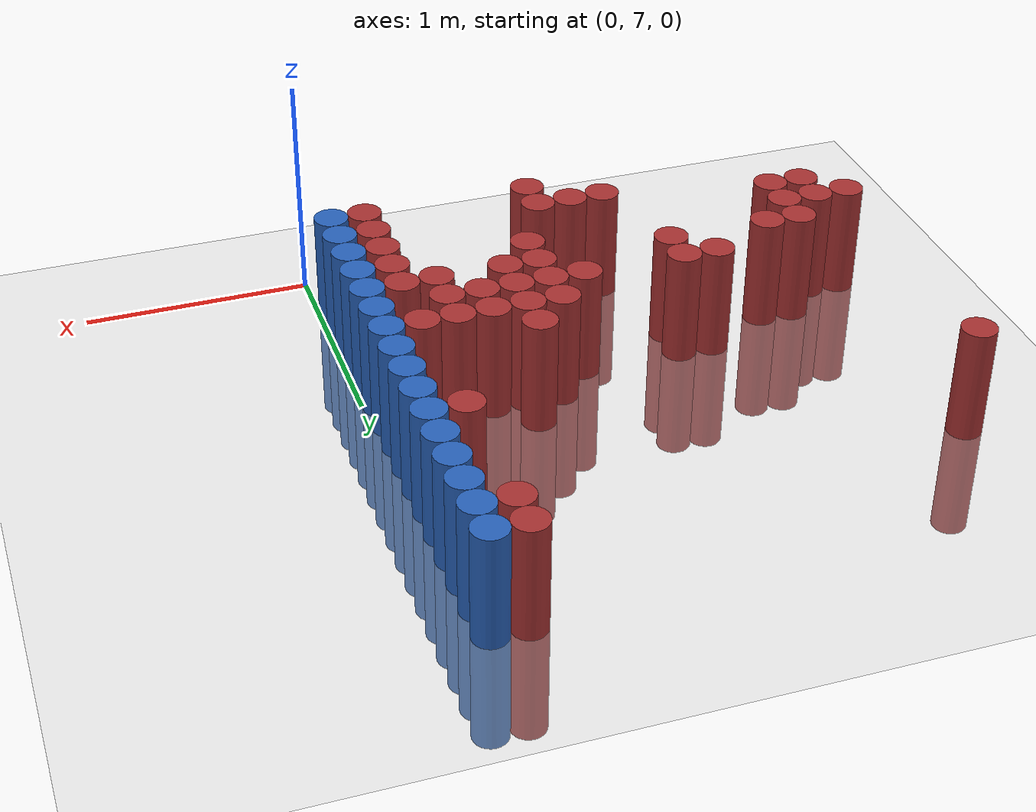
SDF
<sdf version="1.6">
 <world name="default">
  <model name="ground_plane">
   <static>1</static>
   <link name="link">
    <collision name="collision">
     <geometry><plane><normal>0 0 1</normal><size>100 100</size></plane></geometry>
     <surface><friction><ode><mu>100</mu><mu2>50</mu2></ode></friction></surface>
    </collision>
    <visual name="visual">
     <cast_shadows>0</cast_shadows>
     <geometry><plane><normal>0 0 1</normal><size>100 100</size></plane></geometry>
     <material>
      <script><uri>file://media/materials/scripts/gazebo.material</uri><name>Gazebo/Grey</name></script>
     </material>
    </visual>
   </link>
  </model>
  <model name="unit_cylinder_152">
   <static>1</static>
   <pose>-2.325000 7.725000 0.000000 0.000000 0.000000 0.000000</pose>
   <link name="link">
    <inertial>
     <mass>1</mass>
     <inertia><ixx>0.145833</ixx><ixy>0</ixy><ixz>0</ixz><iyy>0.145833</iyy><iyz>0</iyz><izz>0.125</izz></inertia>
    </inertial>
    <collision name="collision">
     <geometry><cylinder><radius>0.075000</radius><length>1</length></cylinder></geometry>
    </collision>
    <visual name="visual">
     <geometry><cylinder><radius>0.075000</radius><length>1</length></cylinder></geometry>
     <material>
      <ambient>0.648000 0.192000 0.192000 1</ambient>
      <diffuse>0.648000 0.192000 0.192000 1</diffuse>
     </material>
     <material>
      <script><name>Gazebo/Grey</name><uri>file://media/materials/scripts/gazebo.material</uri></script>
     </material>
    </visual>
   </link>
  </model>
  <model name="unit_cylinder_153">
   <static>1</static>
   <pose>-2.325000 8.925000 0.000000 0.000000 0.000000 0.000000</pose>
   <link name="link">
    <inertial>
     <mass>1</mass>
     <inertia><ixx>0.145833</ixx><ixy>0</ixy><ixz>0</ixz><iyy>0.145833</iyy><iyz>0</iyz><izz>0.125</izz></inertia>
    </inertial>
    <collision name="collision">
     <geometry><cylinder><radius>0.075000</radius><length>1</length></cylinder></geometry>
    </collision>
    <visual name="visual">
     <geometry><cylinder><radius>0.075000</radius><length>1</length></cylinder></geometry>
     <material>
      <ambient>0.648000 0.192000 0.192000 1</ambient>
      <diffuse>0.648000 0.192000 0.192000 1</diffuse>
     </material>
     <material>
      <script><name>Gazebo/Grey</name><uri>file://media/materials/scripts/gazebo.material</uri></script>
     </material>
    </visual>
   </link>
  </model>
  <model name="unit_cylinder_154">
   <static>1</static>
   <pose>-2.175000 7.575000 0.000000 0.000000 0.000000 0.000000</pose>
   <link name="link">
    <inertial>
     <mass>1</mass>
     <inertia><ixx>0.145833</ixx><ixy>0</ixy><ixz>0</ixz><iyy>0.145833</iyy><iyz>0</iyz><izz>0.125</izz></inertia>
    </inertial>
    <collision name="collision">
     <geometry><cylinder><radius>0.075000</radius><length>1</length></cylinder></geometry>
    </collision>
    <visual name="visual">
     <geometry><cylinder><radius>0.075000</radius><length>1</length></cylinder></geometry>
     <material>
      <ambient>0.648000 0.192000 0.192000 1</ambient>
      <diffuse>0.648000 0.192000 0.192000 1</diffuse>
     </material>
     <material>
      <script><name>Gazebo/Grey</name><uri>file://media/materials/scripts/gazebo.material</uri></script>
     </material>
    </visual>
   </link>
  </model>
  <model name="unit_cylinder_155">
   <static>1</static>
   <pose>-2.175000 7.725000 0.000000 0.000000 0.000000 0.000000</pose>
   <link name="link">
    <inertial>
     <mass>1</mass>
     <inertia><ixx>0.145833</ixx><ixy>0</ixy><ixz>0</ixz><iyy>0.145833</iyy><iyz>0</iyz><izz>0.125</izz></inertia>
    </inertial>
    <collision name="collision">
     <geometry><cylinder><radius>0.075000</radius><length>1</length></cylinder></geometry>
    </collision>
    <visual name="visual">
     <geometry><cylinder><radius>0.075000</radius><length>1</length></cylinder></geometry>
     <material>
      <ambient>0.648000 0.192000 0.192000 1</ambient>
      <diffuse>0.648000 0.192000 0.192000 1</diffuse>
     </material>
     <material>
      <script><name>Gazebo/Grey</name><uri>file://media/materials/scripts/gazebo.material</uri></script>
     </material>
    </visual>
   </link>
  </model>
  <model name="unit_cylinder_156">
   <static>1</static>
   <pose>-2.025000 7.575000 0.000000 0.000000 0.000000 0.000000</pose>
   <link name="link">
    <inertial>
     <mass>1</mass>
     <inertia><ixx>0.145833</ixx><ixy>0</ixy><ixz>0</ixz><iyy>0.145833</iyy><iyz>0</iyz><izz>0.125</izz></inertia>
    </inertial>
    <collision name="collision">
     <geometry><cylinder><radius>0.075000</radius><length>1</length></cylinder></geometry>
    </collision>
    <visual name="visual">
     <geometry><cylinder><radius>0.075000</radius><length>1</length></cylinder></geometry>
     <material>
      <ambient>0.648000 0.192000 0.192000 1</ambient>
      <diffuse>0.648000 0.192000 0.192000 1</diffuse>
     </material>
     <material>
      <script><name>Gazebo/Grey</name><uri>file://media/materials/scripts/gazebo.material</uri></script>
     </material>
    </visual>
   </link>
  </model>
  <model name="unit_cylinder_157">
   <static>1</static>
   <pose>-2.025000 7.725000 0.000000 0.000000 0.000000 0.000000</pose>
   <link name="link">
    <inertial>
     <mass>1</mass>
     <inertia><ixx>0.145833</ixx><ixy>0</ixy><ixz>0</ixz><iyy>0.145833</iyy><iyz>0</iyz><izz>0.125</izz></inertia>
    </inertial>
    <collision name="collision">
     <geometry><cylinder><radius>0.075000</radius><length>1</length></cylinder></geometry>
    </collision>
    <visual name="visual">
     <geometry><cylinder><radius>0.075000</radius><length>1</length></cylinder></geometry>
     <material>
      <ambient>0.648000 0.192000 0.192000 1</ambient>
      <diffuse>0.648000 0.192000 0.192000 1</diffuse>
     </material>
     <material>
      <script><name>Gazebo/Grey</name><uri>file://media/materials/scripts/gazebo.material</uri></script>
     </material>
    </visual>
   </link>
  </model>
  <model name="unit_cylinder_158">
   <static>1</static>
   <pose>-2.025000 7.875000 0.000000 0.000000 0.000000 0.000000</pose>
   <link name="link">
    <inertial>
     <mass>1</mass>
     <inertia><ixx>0.145833</ixx><ixy>0</ixy><ixz>0</ixz><iyy>0.145833</iyy><iyz>0</iyz><izz>0.125</izz></inertia>
    </inertial>
    <collision name="collision">
     <geometry><cylinder><radius>0.075000</radius><length>1</length></cylinder></geometry>
    </collision>
    <visual name="visual">
     <geometry><cylinder><radius>0.075000</radius><length>1</length></cylinder></geometry>
     <material>
      <ambient>0.648000 0.192000 0.192000 1</ambient>
      <diffuse>0.648000 0.192000 0.192000 1</diffuse>
     </material>
     <material>
      <script><name>Gazebo/Grey</name><uri>file://media/materials/scripts/gazebo.material</uri></script>
     </material>
    </visual>
   </link>
  </model>
  <model name="unit_cylinder_161">
   <static>1</static>
   <pose>-1.875000 7.875000 0.000000 0.000000 0.000000 0.000000</pose>
   <link name="link">
    <inertial>
     <mass>1</mass>
     <inertia><ixx>0.145833</ixx><ixy>0</ixy><ixz>0</ixz><iyy>0.145833</iyy><iyz>0</iyz><izz>0.125</izz></inertia>
    </inertial>
    <collision name="collision">
     <geometry><cylinder><radius>0.075000</radius><length>1</length></cylinder></geometry>
    </collision>
    <visual name="visual">
     <geometry><cylinder><radius>0.075000</radius><length>1</length></cylinder></geometry>
     <material>
      <ambient>0.648000 0.192000 0.192000 1</ambient>
      <diffuse>0.648000 0.192000 0.192000 1</diffuse>
     </material>
     <material>
      <script><name>Gazebo/Grey</name><uri>file://media/materials/scripts/gazebo.material</uri></script>
     </material>
    </visual>
   </link>
  </model>
  <model name="unit_cylinder_170">
   <static>1</static>
   <pose>-1.575000 8.025000 0.000000 0.000000 0.000000 0.000000</pose>
   <link name="link">
    <inertial>
     <mass>1</mass>
     <inertia><ixx>0.145833</ixx><ixy>0</ixy><ixz>0</ixz><iyy>0.145833</iyy><iyz>0</iyz><izz>0.125</izz></inertia>
    </inertial>
    <collision name="collision">
     <geometry><cylinder><radius>0.075000</radius><length>1</length></cylinder></geometry>
    </collision>
    <visual name="visual">
     <geometry><cylinder><radius>0.075000</radius><length>1</length></cylinder></geometry>
     <material>
      <ambient>0.648000 0.192000 0.192000 1</ambient>
      <diffuse>0.648000 0.192000 0.192000 1</diffuse>
     </material>
     <material>
      <script><name>Gazebo/Grey</name><uri>file://media/materials/scripts/gazebo.material</uri></script>
     </material>
    </visual>
   </link>
  </model>
  <model name="unit_cylinder_175">
   <static>1</static>
   <pose>-1.425000 7.875000 0.000000 0.000000 0.000000 0.000000</pose>
   <link name="link">
    <inertial>
     <mass>1</mass>
     <inertia><ixx>0.145833</ixx><ixy>0</ixy><ixz>0</ixz><iyy>0.145833</iyy><iyz>0</iyz><izz>0.125</izz></inertia>
    </inertial>
    <collision name="collision">
     <geometry><cylinder><radius>0.075000</radius><length>1</length></cylinder></geometry>
    </collision>
    <visual name="visual">
     <geometry><cylinder><radius>0.075000</radius><length>1</length></cylinder></geometry>
     <material>
      <ambient>0.648000 0.192000 0.192000 1</ambient>
      <diffuse>0.648000 0.192000 0.192000 1</diffuse>
     </material>
     <material>
      <script><name>Gazebo/Grey</name><uri>file://media/materials/scripts/gazebo.material</uri></script>
     </material>
    </visual>
   </link>
  </model>
  <model name="unit_cylinder_176">
   <static>1</static>
   <pose>-1.425000 8.025000 0.000000 0.000000 0.000000 0.000000</pose>
   <link name="link">
    <inertial>
     <mass>1</mass>
     <inertia><ixx>0.145833</ixx><ixy>0</ixy><ixz>0</ixz><iyy>0.145833</iyy><iyz>0</iyz><izz>0.125</izz></inertia>
    </inertial>
    <collision name="collision">
     <geometry><cylinder><radius>0.075000</radius><length>1</length></cylinder></geometry>
    </collision>
    <visual name="visual">
     <geometry><cylinder><radius>0.075000</radius><length>1</length></cylinder></geometry>
     <material>
      <ambient>0.648000 0.192000 0.192000 1</ambient>
      <diffuse>0.648000 0.192000 0.192000 1</diffuse>
     </material>
     <material>
      <script><name>Gazebo/Grey</name><uri>file://media/materials/scripts/gazebo.material</uri></script>
     </material>
    </visual>
   </link>
  </model>
  <model name="unit_cylinder_183">
   <static>1</static>
   <pose>-1.275000 7.425000 0.000000 0.000000 0.000000 0.000000</pose>
   <link name="link">
    <inertial>
     <mass>1</mass>
     <inertia><ixx>0.145833</ixx><ixy>0</ixy><ixz>0</ixz><iyy>0.145833</iyy><iyz>0</iyz><izz>0.125</izz></inertia>
    </inertial>
    <collision name="collision">
     <geometry><cylinder><radius>0.075000</radius><length>1</length></cylinder></geometry>
    </collision>
    <visual name="visual">
     <geometry><cylinder><radius>0.075000</radius><length>1</length></cylinder></geometry>
     <material>
      <ambient>0.648000 0.192000 0.192000 1</ambient>
      <diffuse>0.648000 0.192000 0.192000 1</diffuse>
     </material>
     <material>
      <script><name>Gazebo/Grey</name><uri>file://media/materials/scripts/gazebo.material</uri></script>
     </material>
    </visual>
   </link>
  </model>
  <model name="unit_cylinder_190">
   <static>1</static>
   <pose>-1.125000 7.425000 0.000000 0.000000 0.000000 0.000000</pose>
   <link name="link">
    <inertial>
     <mass>1</mass>
     <inertia><ixx>0.145833</ixx><ixy>0</ixy><ixz>0</ixz><iyy>0.145833</iyy><iyz>0</iyz><izz>0.125</izz></inertia>
    </inertial>
    <collision name="collision">
     <geometry><cylinder><radius>0.075000</radius><length>1</length></cylinder></geometry>
    </collision>
    <visual name="visual">
     <geometry><cylinder><radius>0.075000</radius><length>1</length></cylinder></geometry>
     <material>
      <ambient>0.648000 0.192000 0.192000 1</ambient>
      <diffuse>0.648000 0.192000 0.192000 1</diffuse>
     </material>
     <material>
      <script><name>Gazebo/Grey</name><uri>file://media/materials/scripts/gazebo.material</uri></script>
     </material>
    </visual>
   </link>
  </model>
  <model name="unit_cylinder_196">
   <static>1</static>
   <pose>-0.975000 7.275000 0.000000 0.000000 0.000000 0.000000</pose>
   <link name="link">
    <inertial>
     <mass>1</mass>
     <inertia><ixx>0.145833</ixx><ixy>0</ixy><ixz>0</ixz><iyy>0.145833</iyy><iyz>0</iyz><izz>0.125</izz></inertia>
    </inertial>
    <collision name="collision">
     <geometry><cylinder><radius>0.075000</radius><length>1</length></cylinder></geometry>
    </collision>
    <visual name="visual">
     <geometry><cylinder><radius>0.075000</radius><length>1</length></cylinder></geometry>
     <material>
      <ambient>0.648000 0.192000 0.192000 1</ambient>
      <diffuse>0.648000 0.192000 0.192000 1</diffuse>
     </material>
     <material>
      <script><name>Gazebo/Grey</name><uri>file://media/materials/scripts/gazebo.material</uri></script>
     </material>
    </visual>
   </link>
  </model>
  <model name="unit_cylinder_197">
   <static>1</static>
   <pose>-0.975000 7.425000 0.000000 0.000000 0.000000 0.000000</pose>
   <link name="link">
    <inertial>
     <mass>1</mass>
     <inertia><ixx>0.145833</ixx><ixy>0</ixy><ixz>0</ixz><iyy>0.145833</iyy><iyz>0</iyz><izz>0.125</izz></inertia>
    </inertial>
    <collision name="collision">
     <geometry><cylinder><radius>0.075000</radius><length>1</length></cylinder></geometry>
    </collision>
    <visual name="visual">
     <geometry><cylinder><radius>0.075000</radius><length>1</length></cylinder></geometry>
     <material>
      <ambient>0.648000 0.192000 0.192000 1</ambient>
      <diffuse>0.648000 0.192000 0.192000 1</diffuse>
     </material>
     <material>
      <script><name>Gazebo/Grey</name><uri>file://media/materials/scripts/gazebo.material</uri></script>
     </material>
    </visual>
   </link>
  </model>
  <model name="unit_cylinder_198">
   <static>1</static>
   <pose>-0.975000 8.025000 0.000000 0.000000 0.000000 0.000000</pose>
   <link name="link">
    <inertial>
     <mass>1</mass>
     <inertia><ixx>0.145833</ixx><ixy>0</ixy><ixz>0</ixz><iyy>0.145833</iyy><iyz>0</iyz><izz>0.125</izz></inertia>
    </inertial>
    <collision name="collision">
     <geometry><cylinder><radius>0.075000</radius><length>1</length></cylinder></geometry>
    </collision>
    <visual name="visual">
     <geometry><cylinder><radius>0.075000</radius><length>1</length></cylinder></geometry>
     <material>
      <ambient>0.648000 0.192000 0.192000 1</ambient>
      <diffuse>0.648000 0.192000 0.192000 1</diffuse>
     </material>
     <material>
      <script><name>Gazebo/Grey</name><uri>file://media/materials/scripts/gazebo.material</uri></script>
     </material>
    </visual>
   </link>
  </model>
  <model name="unit_cylinder_202">
   <static>1</static>
   <pose>-0.825000 7.725000 0.000000 0.000000 0.000000 0.000000</pose>
   <link name="link">
    <inertial>
     <mass>1</mass>
     <inertia><ixx>0.145833</ixx><ixy>0</ixy><ixz>0</ixz><iyy>0.145833</iyy><iyz>0</iyz><izz>0.125</izz></inertia>
    </inertial>
    <collision name="collision">
     <geometry><cylinder><radius>0.075000</radius><length>1</length></cylinder></geometry>
    </collision>
    <visual name="visual">
     <geometry><cylinder><radius>0.075000</radius><length>1</length></cylinder></geometry>
     <material>
      <ambient>0.648000 0.192000 0.192000 1</ambient>
      <diffuse>0.648000 0.192000 0.192000 1</diffuse>
     </material>
     <material>
      <script><name>Gazebo/Grey</name><uri>file://media/materials/scripts/gazebo.material</uri></script>
     </material>
    </visual>
   </link>
  </model>
  <model name="unit_cylinder_203">
   <static>1</static>
   <pose>-0.825000 7.875000 0.000000 0.000000 0.000000 0.000000</pose>
   <link name="link">
    <inertial>
     <mass>1</mass>
     <inertia><ixx>0.145833</ixx><ixy>0</ixy><ixz>0</ixz><iyy>0.145833</iyy><iyz>0</iyz><izz>0.125</izz></inertia>
    </inertial>
    <collision name="collision">
     <geometry><cylinder><radius>0.075000</radius><length>1</length></cylinder></geometry>
    </collision>
    <visual name="visual">
     <geometry><cylinder><radius>0.075000</radius><length>1</length></cylinder></geometry>
     <material>
      <ambient>0.648000 0.192000 0.192000 1</ambient>
      <diffuse>0.648000 0.192000 0.192000 1</diffuse>
     </material>
     <material>
      <script><name>Gazebo/Grey</name><uri>file://media/materials/scripts/gazebo.material</uri></script>
     </material>
    </visual>
   </link>
  </model>
  <model name="unit_cylinder_204">
   <static>1</static>
   <pose>-0.825000 8.025000 0.000000 0.000000 0.000000 0.000000</pose>
   <link name="link">
    <inertial>
     <mass>1</mass>
     <inertia><ixx>0.145833</ixx><ixy>0</ixy><ixz>0</ixz><iyy>0.145833</iyy><iyz>0</iyz><izz>0.125</izz></inertia>
    </inertial>
    <collision name="collision">
     <geometry><cylinder><radius>0.075000</radius><length>1</length></cylinder></geometry>
    </collision>
    <visual name="visual">
     <geometry><cylinder><radius>0.075000</radius><length>1</length></cylinder></geometry>
     <material>
      <ambient>0.648000 0.192000 0.192000 1</ambient>
      <diffuse>0.648000 0.192000 0.192000 1</diffuse>
     </material>
     <material>
      <script><name>Gazebo/Grey</name><uri>file://media/materials/scripts/gazebo.material</uri></script>
     </material>
    </visual>
   </link>
  </model>
  <model name="unit_cylinder_205">
   <static>1</static>
   <pose>-0.825000 8.175000 0.000000 0.000000 0.000000 0.000000</pose>
   <link name="link">
    <inertial>
     <mass>1</mass>
     <inertia><ixx>0.145833</ixx><ixy>0</ixy><ixz>0</ixz><iyy>0.145833</iyy><iyz>0</iyz><izz>0.125</izz></inertia>
    </inertial>
    <collision name="collision">
     <geometry><cylinder><radius>0.075000</radius><length>1</length></cylinder></geometry>
    </collision>
    <visual name="visual">
     <geometry><cylinder><radius>0.075000</radius><length>1</length></cylinder></geometry>
     <material>
      <ambient>0.648000 0.192000 0.192000 1</ambient>
      <diffuse>0.648000 0.192000 0.192000 1</diffuse>
     </material>
     <material>
      <script><name>Gazebo/Grey</name><uri>file://media/materials/scripts/gazebo.material</uri></script>
     </material>
    </visual>
   </link>
  </model>
  <model name="unit_cylinder_209">
   <static>1</static>
   <pose>-0.675000 7.875000 0.000000 0.000000 0.000000 0.000000</pose>
   <link name="link">
    <inertial>
     <mass>1</mass>
     <inertia><ixx>0.145833</ixx><ixy>0</ixy><ixz>0</ixz><iyy>0.145833</iyy><iyz>0</iyz><izz>0.125</izz></inertia>
    </inertial>
    <collision name="collision">
     <geometry><cylinder><radius>0.075000</radius><length>1</length></cylinder></geometry>
    </collision>
    <visual name="visual">
     <geometry><cylinder><radius>0.075000</radius><length>1</length></cylinder></geometry>
     <material>
      <ambient>0.648000 0.192000 0.192000 1</ambient>
      <diffuse>0.648000 0.192000 0.192000 1</diffuse>
     </material>
     <material>
      <script><name>Gazebo/Grey</name><uri>file://media/materials/scripts/gazebo.material</uri></script>
     </material>
    </visual>
   </link>
  </model>
  <model name="unit_cylinder_210">
   <static>1</static>
   <pose>-0.675000 8.025000 0.000000 0.000000 0.000000 0.000000</pose>
   <link name="link">
    <inertial>
     <mass>1</mass>
     <inertia><ixx>0.145833</ixx><ixy>0</ixy><ixz>0</ixz><iyy>0.145833</iyy><iyz>0</iyz><izz>0.125</izz></inertia>
    </inertial>
    <collision name="collision">
     <geometry><cylinder><radius>0.075000</radius><length>1</length></cylinder></geometry>
    </collision>
    <visual name="visual">
     <geometry><cylinder><radius>0.075000</radius><length>1</length></cylinder></geometry>
     <material>
      <ambient>0.648000 0.192000 0.192000 1</ambient>
      <diffuse>0.648000 0.192000 0.192000 1</diffuse>
     </material>
     <material>
      <script><name>Gazebo/Grey</name><uri>file://media/materials/scripts/gazebo.material</uri></script>
     </material>
    </visual>
   </link>
  </model>
  <model name="unit_cylinder_211">
   <static>1</static>
   <pose>-0.675000 8.175000 0.000000 0.000000 0.000000 0.000000</pose>
   <link name="link">
    <inertial>
     <mass>1</mass>
     <inertia><ixx>0.145833</ixx><ixy>0</ixy><ixz>0</ixz><iyy>0.145833</iyy><iyz>0</iyz><izz>0.125</izz></inertia>
    </inertial>
    <collision name="collision">
     <geometry><cylinder><radius>0.075000</radius><length>1</length></cylinder></geometry>
    </collision>
    <visual name="visual">
     <geometry><cylinder><radius>0.075000</radius><length>1</length></cylinder></geometry>
     <material>
      <ambient>0.648000 0.192000 0.192000 1</ambient>
      <diffuse>0.648000 0.192000 0.192000 1</diffuse>
     </material>
     <material>
      <script><name>Gazebo/Grey</name><uri>file://media/materials/scripts/gazebo.material</uri></script>
     </material>
    </visual>
   </link>
  </model>
  <model name="unit_cylinder_212">
   <static>1</static>
   <pose>-0.675000 8.325000 0.000000 0.000000 0.000000 0.000000</pose>
   <link name="link">
    <inertial>
     <mass>1</mass>
     <inertia><ixx>0.145833</ixx><ixy>0</ixy><ixz>0</ixz><iyy>0.145833</iyy><iyz>0</iyz><izz>0.125</izz></inertia>
    </inertial>
    <collision name="collision">
     <geometry><cylinder><radius>0.075000</radius><length>1</length></cylinder></geometry>
    </collision>
    <visual name="visual">
     <geometry><cylinder><radius>0.075000</radius><length>1</length></cylinder></geometry>
     <material>
      <ambient>0.648000 0.192000 0.192000 1</ambient>
      <diffuse>0.648000 0.192000 0.192000 1</diffuse>
     </material>
     <material>
      <script><name>Gazebo/Grey</name><uri>file://media/materials/scripts/gazebo.material</uri></script>
     </material>
    </visual>
   </link>
  </model>
  <model name="unit_cylinder_215">
   <static>1</static>
   <pose>-0.525000 8.025000 0.000000 0.000000 0.000000 0.000000</pose>
   <link name="link">
    <inertial>
     <mass>1</mass>
     <inertia><ixx>0.145833</ixx><ixy>0</ixy><ixz>0</ixz><iyy>0.145833</iyy><iyz>0</iyz><izz>0.125</izz></inertia>
    </inertial>
    <collision name="collision">
     <geometry><cylinder><radius>0.075000</radius><length>1</length></cylinder></geometry>
    </collision>
    <visual name="visual">
     <geometry><cylinder><radius>0.075000</radius><length>1</length></cylinder></geometry>
     <material>
      <ambient>0.648000 0.192000 0.192000 1</ambient>
      <diffuse>0.648000 0.192000 0.192000 1</diffuse>
     </material>
     <material>
      <script><name>Gazebo/Grey</name><uri>file://media/materials/scripts/gazebo.material</uri></script>
     </material>
    </visual>
   </link>
  </model>
  <model name="unit_cylinder_216">
   <static>1</static>
   <pose>-0.525000 8.175000 0.000000 0.000000 0.000000 0.000000</pose>
   <link name="link">
    <inertial>
     <mass>1</mass>
     <inertia><ixx>0.145833</ixx><ixy>0</ixy><ixz>0</ixz><iyy>0.145833</iyy><iyz>0</iyz><izz>0.125</izz></inertia>
    </inertial>
    <collision name="collision">
     <geometry><cylinder><radius>0.075000</radius><length>1</length></cylinder></geometry>
    </collision>
    <visual name="visual">
     <geometry><cylinder><radius>0.075000</radius><length>1</length></cylinder></geometry>
     <material>
      <ambient>0.648000 0.192000 0.192000 1</ambient>
      <diffuse>0.648000 0.192000 0.192000 1</diffuse>
     </material>
     <material>
      <script><name>Gazebo/Grey</name><uri>file://media/materials/scripts/gazebo.material</uri></script>
     </material>
    </visual>
   </link>
  </model>
  <model name="unit_cylinder_220">
   <static>1</static>
   <pose>-0.375000 7.875000 0.000000 0.000000 0.000000 0.000000</pose>
   <link name="link">
    <inertial>
     <mass>1</mass>
     <inertia><ixx>0.145833</ixx><ixy>0</ixy><ixz>0</ixz><iyy>0.145833</iyy><iyz>0</iyz><izz>0.125</izz></inertia>
    </inertial>
    <collision name="collision">
     <geometry><cylinder><radius>0.075000</radius><length>1</length></cylinder></geometry>
    </collision>
    <visual name="visual">
     <geometry><cylinder><radius>0.075000</radius><length>1</length></cylinder></geometry>
     <material>
      <ambient>0.648000 0.192000 0.192000 1</ambient>
      <diffuse>0.648000 0.192000 0.192000 1</diffuse>
     </material>
     <material>
      <script><name>Gazebo/Grey</name><uri>file://media/materials/scripts/gazebo.material</uri></script>
     </material>
    </visual>
   </link>
  </model>
  <model name="unit_cylinder_221">
   <static>1</static>
   <pose>-0.375000 8.025000 0.000000 0.000000 0.000000 0.000000</pose>
   <link name="link">
    <inertial>
     <mass>1</mass>
     <inertia><ixx>0.145833</ixx><ixy>0</ixy><ixz>0</ixz><iyy>0.145833</iyy><iyz>0</iyz><izz>0.125</izz></inertia>
    </inertial>
    <collision name="collision">
     <geometry><cylinder><radius>0.075000</radius><length>1</length></cylinder></geometry>
    </collision>
    <visual name="visual">
     <geometry><cylinder><radius>0.075000</radius><length>1</length></cylinder></geometry>
     <material>
      <ambient>0.648000 0.192000 0.192000 1</ambient>
      <diffuse>0.648000 0.192000 0.192000 1</diffuse>
     </material>
     <material>
      <script><name>Gazebo/Grey</name><uri>file://media/materials/scripts/gazebo.material</uri></script>
     </material>
    </visual>
   </link>
  </model>
  <model name="unit_cylinder_222">
   <static>1</static>
   <pose>-0.375000 8.175000 0.000000 0.000000 0.000000 0.000000</pose>
   <link name="link">
    <inertial>
     <mass>1</mass>
     <inertia><ixx>0.145833</ixx><ixy>0</ixy><ixz>0</ixz><iyy>0.145833</iyy><iyz>0</iyz><izz>0.125</izz></inertia>
    </inertial>
    <collision name="collision">
     <geometry><cylinder><radius>0.075000</radius><length>1</length></cylinder></geometry>
    </collision>
    <visual name="visual">
     <geometry><cylinder><radius>0.075000</radius><length>1</length></cylinder></geometry>
     <material>
      <ambient>0.648000 0.192000 0.192000 1</ambient>
      <diffuse>0.648000 0.192000 0.192000 1</diffuse>
     </material>
     <material>
      <script><name>Gazebo/Grey</name><uri>file://media/materials/scripts/gazebo.material</uri></script>
     </material>
    </visual>
   </link>
  </model>
  <model name="unit_cylinder_230">
   <static>1</static>
   <pose>-0.225000 7.275000 0.000000 0.000000 0.000000 0.000000</pose>
   <link name="link">
    <inertial>
     <mass>1</mass>
     <inertia><ixx>0.145833</ixx><ixy>0</ixy><ixz>0</ixz><iyy>0.145833</iyy><iyz>0</iyz><izz>0.125</izz></inertia>
    </inertial>
    <collision name="collision">
     <geometry><cylinder><radius>0.075000</radius><length>1</length></cylinder></geometry>
    </collision>
    <visual name="visual">
     <geometry><cylinder><radius>0.075000</radius><length>1</length></cylinder></geometry>
     <material>
      <ambient>0.648000 0.192000 0.192000 1</ambient>
      <diffuse>0.648000 0.192000 0.192000 1</diffuse>
     </material>
     <material>
      <script><name>Gazebo/Grey</name><uri>file://media/materials/scripts/gazebo.material</uri></script>
     </material>
    </visual>
   </link>
  </model>
  <model name="unit_cylinder_231">
   <static>1</static>
   <pose>-0.225000 7.425000 0.000000 0.000000 0.000000 0.000000</pose>
   <link name="link">
    <inertial>
     <mass>1</mass>
     <inertia><ixx>0.145833</ixx><ixy>0</ixy><ixz>0</ixz><iyy>0.145833</iyy><iyz>0</iyz><izz>0.125</izz></inertia>
    </inertial>
    <collision name="collision">
     <geometry><cylinder><radius>0.075000</radius><length>1</length></cylinder></geometry>
    </collision>
    <visual name="visual">
     <geometry><cylinder><radius>0.075000</radius><length>1</length></cylinder></geometry>
     <material>
      <ambient>0.648000 0.192000 0.192000 1</ambient>
      <diffuse>0.648000 0.192000 0.192000 1</diffuse>
     </material>
     <material>
      <script><name>Gazebo/Grey</name><uri>file://media/materials/scripts/gazebo.material</uri></script>
     </material>
    </visual>
   </link>
  </model>
  <model name="unit_cylinder_232">
   <static>1</static>
   <pose>-0.225000 7.575000 0.000000 0.000000 0.000000 0.000000</pose>
   <link name="link">
    <inertial>
     <mass>1</mass>
     <inertia><ixx>0.145833</ixx><ixy>0</ixy><ixz>0</ixz><iyy>0.145833</iyy><iyz>0</iyz><izz>0.125</izz></inertia>
    </inertial>
    <collision name="collision">
     <geometry><cylinder><radius>0.075000</radius><length>1</length></cylinder></geometry>
    </collision>
    <visual name="visual">
     <geometry><cylinder><radius>0.075000</radius><length>1</length></cylinder></geometry>
     <material>
      <ambient>0.648000 0.192000 0.192000 1</ambient>
      <diffuse>0.648000 0.192000 0.192000 1</diffuse>
     </material>
     <material>
      <script><name>Gazebo/Grey</name><uri>file://media/materials/scripts/gazebo.material</uri></script>
     </material>
    </visual>
   </link>
  </model>
  <model name="unit_cylinder_233">
   <static>1</static>
   <pose>-0.225000 7.725000 0.000000 0.000000 0.000000 0.000000</pose>
   <link name="link">
    <inertial>
     <mass>1</mass>
     <inertia><ixx>0.145833</ixx><ixy>0</ixy><ixz>0</ixz><iyy>0.145833</iyy><iyz>0</iyz><izz>0.125</izz></inertia>
    </inertial>
    <collision name="collision">
     <geometry><cylinder><radius>0.075000</radius><length>1</length></cylinder></geometry>
    </collision>
    <visual name="visual">
     <geometry><cylinder><radius>0.075000</radius><length>1</length></cylinder></geometry>
     <material>
      <ambient>0.648000 0.192000 0.192000 1</ambient>
      <diffuse>0.648000 0.192000 0.192000 1</diffuse>
     </material>
     <material>
      <script><name>Gazebo/Grey</name><uri>file://media/materials/scripts/gazebo.material</uri></script>
     </material>
    </visual>
   </link>
  </model>
  <model name="unit_cylinder_234">
   <static>1</static>
   <pose>-0.225000 7.875000 0.000000 0.000000 0.000000 0.000000</pose>
   <link name="link">
    <inertial>
     <mass>1</mass>
     <inertia><ixx>0.145833</ixx><ixy>0</ixy><ixz>0</ixz><iyy>0.145833</iyy><iyz>0</iyz><izz>0.125</izz></inertia>
    </inertial>
    <collision name="collision">
     <geometry><cylinder><radius>0.075000</radius><length>1</length></cylinder></geometry>
    </collision>
    <visual name="visual">
     <geometry><cylinder><radius>0.075000</radius><length>1</length></cylinder></geometry>
     <material>
      <ambient>0.648000 0.192000 0.192000 1</ambient>
      <diffuse>0.648000 0.192000 0.192000 1</diffuse>
     </material>
     <material>
      <script><name>Gazebo/Grey</name><uri>file://media/materials/scripts/gazebo.material</uri></script>
     </material>
    </visual>
   </link>
  </model>
  <model name="unit_cylinder_235">
   <static>1</static>
   <pose>-0.225000 8.175000 0.000000 0.000000 0.000000 0.000000</pose>
   <link name="link">
    <inertial>
     <mass>1</mass>
     <inertia><ixx>0.145833</ixx><ixy>0</ixy><ixz>0</ixz><iyy>0.145833</iyy><iyz>0</iyz><izz>0.125</izz></inertia>
    </inertial>
    <collision name="collision">
     <geometry><cylinder><radius>0.075000</radius><length>1</length></cylinder></geometry>
    </collision>
    <visual name="visual">
     <geometry><cylinder><radius>0.075000</radius><length>1</length></cylinder></geometry>
     <material>
      <ambient>0.648000 0.192000 0.192000 1</ambient>
      <diffuse>0.648000 0.192000 0.192000 1</diffuse>
     </material>
     <material>
      <script><name>Gazebo/Grey</name><uri>file://media/materials/scripts/gazebo.material</uri></script>
     </material>
    </visual>
   </link>
  </model>
  <model name="unit_cylinder_236">
   <static>1</static>
   <pose>-0.225000 8.775000 0.000000 0.000000 0.000000 0.000000</pose>
   <link name="link">
    <inertial>
     <mass>1</mass>
     <inertia><ixx>0.145833</ixx><ixy>0</ixy><ixz>0</ixz><iyy>0.145833</iyy><iyz>0</iyz><izz>0.125</izz></inertia>
    </inertial>
    <collision name="collision">
     <geometry><cylinder><radius>0.075000</radius><length>1</length></cylinder></geometry>
    </collision>
    <visual name="visual">
     <geometry><cylinder><radius>0.075000</radius><length>1</length></cylinder></geometry>
     <material>
      <ambient>0.648000 0.192000 0.192000 1</ambient>
      <diffuse>0.648000 0.192000 0.192000 1</diffuse>
     </material>
     <material>
      <script><name>Gazebo/Grey</name><uri>file://media/materials/scripts/gazebo.material</uri></script>
     </material>
    </visual>
   </link>
  </model>
  <model name="unit_cylinder_237">
   <static>1</static>
   <pose>-0.225000 9.375000 0.000000 0.000000 0.000000 0.000000</pose>
   <link name="link">
    <inertial>
     <mass>1</mass>
     <inertia><ixx>0.145833</ixx><ixy>0</ixy><ixz>0</ixz><iyy>0.145833</iyy><iyz>0</iyz><izz>0.125</izz></inertia>
    </inertial>
    <collision name="collision">
     <geometry><cylinder><radius>0.075000</radius><length>1</length></cylinder></geometry>
    </collision>
    <visual name="visual">
     <geometry><cylinder><radius>0.075000</radius><length>1</length></cylinder></geometry>
     <material>
      <ambient>0.648000 0.192000 0.192000 1</ambient>
      <diffuse>0.648000 0.192000 0.192000 1</diffuse>
     </material>
     <material>
      <script><name>Gazebo/Grey</name><uri>file://media/materials/scripts/gazebo.material</uri></script>
     </material>
    </visual>
   </link>
  </model>
  <model name="unit_cylinder_238">
   <static>1</static>
   <pose>-0.225000 9.525000 0.000000 0.000000 0.000000 0.000000</pose>
   <link name="link">
    <inertial>
     <mass>1</mass>
     <inertia><ixx>0.145833</ixx><ixy>0</ixy><ixz>0</ixz><iyy>0.145833</iyy><iyz>0</iyz><izz>0.125</izz></inertia>
    </inertial>
    <collision name="collision">
     <geometry><cylinder><radius>0.075000</radius><length>1</length></cylinder></geometry>
    </collision>
    <visual name="visual">
     <geometry><cylinder><radius>0.075000</radius><length>1</length></cylinder></geometry>
     <material>
      <ambient>0.648000 0.192000 0.192000 1</ambient>
      <diffuse>0.648000 0.192000 0.192000 1</diffuse>
     </material>
     <material>
      <script><name>Gazebo/Grey</name><uri>file://media/materials/scripts/gazebo.material</uri></script>
     </material>
    </visual>
   </link>
  </model>
  <model name="unit_cylinder_253">
   <static>1</static>
   <pose>-0.075000 7.275000 0.000000 0.000000 0.000000 0.000000</pose>
   <link name="link">
    <inertial>
     <mass>1</mass>
     <inertia><ixx>0.145833</ixx><ixy>0</ixy><ixz>0</ixz><iyy>0.145833</iyy><iyz>0</iyz><izz>0.125</izz></inertia>
    </inertial>
    <collision name="collision">
     <geometry><cylinder><radius>0.075000</radius><length>1</length></cylinder></geometry>
    </collision>
    <visual name="visual">
     <geometry><cylinder><radius>0.075000</radius><length>1</length></cylinder></geometry>
     <material>
      <ambient>0.152000 0.379000 0.720000 1</ambient>
      <diffuse>0.152000 0.379000 0.720000 1</diffuse>
     </material>
     <material>
      <script><name>Gazebo/Grey</name><uri>file://media/materials/scripts/gazebo.material</uri></script>
     </material>
    </visual>
   </link>
  </model>
  <model name="unit_cylinder_254">
   <static>1</static>
   <pose>-0.075000 7.425000 0.000000 0.000000 0.000000 0.000000</pose>
   <link name="link">
    <inertial>
     <mass>1</mass>
     <inertia><ixx>0.145833</ixx><ixy>0</ixy><ixz>0</ixz><iyy>0.145833</iyy><iyz>0</iyz><izz>0.125</izz></inertia>
    </inertial>
    <collision name="collision">
     <geometry><cylinder><radius>0.075000</radius><length>1</length></cylinder></geometry>
    </collision>
    <visual name="visual">
     <geometry><cylinder><radius>0.075000</radius><length>1</length></cylinder></geometry>
     <material>
      <ambient>0.152000 0.379000 0.720000 1</ambient>
      <diffuse>0.152000 0.379000 0.720000 1</diffuse>
     </material>
     <material>
      <script><name>Gazebo/Grey</name><uri>file://media/materials/scripts/gazebo.material</uri></script>
     </material>
    </visual>
   </link>
  </model>
  <model name="unit_cylinder_255">
   <static>1</static>
   <pose>-0.075000 7.575000 0.000000 0.000000 0.000000 0.000000</pose>
   <link name="link">
    <inertial>
     <mass>1</mass>
     <inertia><ixx>0.145833</ixx><ixy>0</ixy><ixz>0</ixz><iyy>0.145833</iyy><iyz>0</iyz><izz>0.125</izz></inertia>
    </inertial>
    <collision name="collision">
     <geometry><cylinder><radius>0.075000</radius><length>1</length></cylinder></geometry>
    </collision>
    <visual name="visual">
     <geometry><cylinder><radius>0.075000</radius><length>1</length></cylinder></geometry>
     <material>
      <ambient>0.152000 0.379000 0.720000 1</ambient>
      <diffuse>0.152000 0.379000 0.720000 1</diffuse>
     </material>
     <material>
      <script><name>Gazebo/Grey</name><uri>file://media/materials/scripts/gazebo.material</uri></script>
     </material>
    </visual>
   </link>
  </model>
  <model name="unit_cylinder_256">
   <static>1</static>
   <pose>-0.075000 7.725000 0.000000 0.000000 0.000000 0.000000</pose>
   <link name="link">
    <inertial>
     <mass>1</mass>
     <inertia><ixx>0.145833</ixx><ixy>0</ixy><ixz>0</ixz><iyy>0.145833</iyy><iyz>0</iyz><izz>0.125</izz></inertia>
    </inertial>
    <collision name="collision">
     <geometry><cylinder><radius>0.075000</radius><length>1</length></cylinder></geometry>
    </collision>
    <visual name="visual">
     <geometry><cylinder><radius>0.075000</radius><length>1</length></cylinder></geometry>
     <material>
      <ambient>0.152000 0.379000 0.720000 1</ambient>
      <diffuse>0.152000 0.379000 0.720000 1</diffuse>
     </material>
     <material>
      <script><name>Gazebo/Grey</name><uri>file://media/materials/scripts/gazebo.material</uri></script>
     </material>
    </visual>
   </link>
  </model>
  <model name="unit_cylinder_257">
   <static>1</static>
   <pose>-0.075000 7.875000 0.000000 0.000000 0.000000 0.000000</pose>
   <link name="link">
    <inertial>
     <mass>1</mass>
     <inertia><ixx>0.145833</ixx><ixy>0</ixy><ixz>0</ixz><iyy>0.145833</iyy><iyz>0</iyz><izz>0.125</izz></inertia>
    </inertial>
    <collision name="collision">
     <geometry><cylinder><radius>0.075000</radius><length>1</length></cylinder></geometry>
    </collision>
    <visual name="visual">
     <geometry><cylinder><radius>0.075000</radius><length>1</length></cylinder></geometry>
     <material>
      <ambient>0.152000 0.379000 0.720000 1</ambient>
      <diffuse>0.152000 0.379000 0.720000 1</diffuse>
     </material>
     <material>
      <script><name>Gazebo/Grey</name><uri>file://media/materials/scripts/gazebo.material</uri></script>
     </material>
    </visual>
   </link>
  </model>
  <model name="unit_cylinder_258">
   <static>1</static>
   <pose>-0.075000 8.025000 0.000000 0.000000 0.000000 0.000000</pose>
   <link name="link">
    <inertial>
     <mass>1</mass>
     <inertia><ixx>0.145833</ixx><ixy>0</ixy><ixz>0</ixz><iyy>0.145833</iyy><iyz>0</iyz><izz>0.125</izz></inertia>
    </inertial>
    <collision name="collision">
     <geometry><cylinder><radius>0.075000</radius><length>1</length></cylinder></geometry>
    </collision>
    <visual name="visual">
     <geometry><cylinder><radius>0.075000</radius><length>1</length></cylinder></geometry>
     <material>
      <ambient>0.152000 0.379000 0.720000 1</ambient>
      <diffuse>0.152000 0.379000 0.720000 1</diffuse>
     </material>
     <material>
      <script><name>Gazebo/Grey</name><uri>file://media/materials/scripts/gazebo.material</uri></script>
     </material>
    </visual>
   </link>
  </model>
  <model name="unit_cylinder_259">
   <static>1</static>
   <pose>-0.075000 8.175000 0.000000 0.000000 0.000000 0.000000</pose>
   <link name="link">
    <inertial>
     <mass>1</mass>
     <inertia><ixx>0.145833</ixx><ixy>0</ixy><ixz>0</ixz><iyy>0.145833</iyy><iyz>0</iyz><izz>0.125</izz></inertia>
    </inertial>
    <collision name="collision">
     <geometry><cylinder><radius>0.075000</radius><length>1</length></cylinder></geometry>
    </collision>
    <visual name="visual">
     <geometry><cylinder><radius>0.075000</radius><length>1</length></cylinder></geometry>
     <material>
      <ambient>0.152000 0.379000 0.720000 1</ambient>
      <diffuse>0.152000 0.379000 0.720000 1</diffuse>
     </material>
     <material>
      <script><name>Gazebo/Grey</name><uri>file://media/materials/scripts/gazebo.material</uri></script>
     </material>
    </visual>
   </link>
  </model>
  <model name="unit_cylinder_260">
   <static>1</static>
   <pose>-0.075000 8.325000 0.000000 0.000000 0.000000 0.000000</pose>
   <link name="link">
    <inertial>
     <mass>1</mass>
     <inertia><ixx>0.145833</ixx><ixy>0</ixy><ixz>0</ixz><iyy>0.145833</iyy><iyz>0</iyz><izz>0.125</izz></inertia>
    </inertial>
    <collision name="collision">
     <geometry><cylinder><radius>0.075000</radius><length>1</length></cylinder></geometry>
    </collision>
    <visual name="visual">
     <geometry><cylinder><radius>0.075000</radius><length>1</length></cylinder></geometry>
     <material>
      <ambient>0.152000 0.379000 0.720000 1</ambient>
      <diffuse>0.152000 0.379000 0.720000 1</diffuse>
     </material>
     <material>
      <script><name>Gazebo/Grey</name><uri>file://media/materials/scripts/gazebo.material</uri></script>
     </material>
    </visual>
   </link>
  </model>
  <model name="unit_cylinder_261">
   <static>1</static>
   <pose>-0.075000 8.475000 0.000000 0.000000 0.000000 0.000000</pose>
   <link name="link">
    <inertial>
     <mass>1</mass>
     <inertia><ixx>0.145833</ixx><ixy>0</ixy><ixz>0</ixz><iyy>0.145833</iyy><iyz>0</iyz><izz>0.125</izz></inertia>
    </inertial>
    <collision name="collision">
     <geometry><cylinder><radius>0.075000</radius><length>1</length></cylinder></geometry>
    </collision>
    <visual name="visual">
     <geometry><cylinder><radius>0.075000</radius><length>1</length></cylinder></geometry>
     <material>
      <ambient>0.152000 0.379000 0.720000 1</ambient>
      <diffuse>0.152000 0.379000 0.720000 1</diffuse>
     </material>
     <material>
      <script><name>Gazebo/Grey</name><uri>file://media/materials/scripts/gazebo.material</uri></script>
     </material>
    </visual>
   </link>
  </model>
  <model name="unit_cylinder_262">
   <static>1</static>
   <pose>-0.075000 8.625000 0.000000 0.000000 0.000000 0.000000</pose>
   <link name="link">
    <inertial>
     <mass>1</mass>
     <inertia><ixx>0.145833</ixx><ixy>0</ixy><ixz>0</ixz><iyy>0.145833</iyy><iyz>0</iyz><izz>0.125</izz></inertia>
    </inertial>
    <collision name="collision">
     <geometry><cylinder><radius>0.075000</radius><length>1</length></cylinder></geometry>
    </collision>
    <visual name="visual">
     <geometry><cylinder><radius>0.075000</radius><length>1</length></cylinder></geometry>
     <material>
      <ambient>0.152000 0.379000 0.720000 1</ambient>
      <diffuse>0.152000 0.379000 0.720000 1</diffuse>
     </material>
     <material>
      <script><name>Gazebo/Grey</name><uri>file://media/materials/scripts/gazebo.material</uri></script>
     </material>
    </visual>
   </link>
  </model>
  <model name="unit_cylinder_263">
   <static>1</static>
   <pose>-0.075000 8.775000 0.000000 0.000000 0.000000 0.000000</pose>
   <link name="link">
    <inertial>
     <mass>1</mass>
     <inertia><ixx>0.145833</ixx><ixy>0</ixy><ixz>0</ixz><iyy>0.145833</iyy><iyz>0</iyz><izz>0.125</izz></inertia>
    </inertial>
    <collision name="collision">
     <geometry><cylinder><radius>0.075000</radius><length>1</length></cylinder></geometry>
    </collision>
    <visual name="visual">
     <geometry><cylinder><radius>0.075000</radius><length>1</length></cylinder></geometry>
     <material>
      <ambient>0.152000 0.379000 0.720000 1</ambient>
      <diffuse>0.152000 0.379000 0.720000 1</diffuse>
     </material>
     <material>
      <script><name>Gazebo/Grey</name><uri>file://media/materials/scripts/gazebo.material</uri></script>
     </material>
    </visual>
   </link>
  </model>
  <model name="unit_cylinder_264">
   <static>1</static>
   <pose>-0.075000 8.925000 0.000000 0.000000 0.000000 0.000000</pose>
   <link name="link">
    <inertial>
     <mass>1</mass>
     <inertia><ixx>0.145833</ixx><ixy>0</ixy><ixz>0</ixz><iyy>0.145833</iyy><iyz>0</iyz><izz>0.125</izz></inertia>
    </inertial>
    <collision name="collision">
     <geometry><cylinder><radius>0.075000</radius><length>1</length></cylinder></geometry>
    </collision>
    <visual name="visual">
     <geometry><cylinder><radius>0.075000</radius><length>1</length></cylinder></geometry>
     <material>
      <ambient>0.152000 0.379000 0.720000 1</ambient>
      <diffuse>0.152000 0.379000 0.720000 1</diffuse>
     </material>
     <material>
      <script><name>Gazebo/Grey</name><uri>file://media/materials/scripts/gazebo.material</uri></script>
     </material>
    </visual>
   </link>
  </model>
  <model name="unit_cylinder_265">
   <static>1</static>
   <pose>-0.075000 9.075000 0.000000 0.000000 0.000000 0.000000</pose>
   <link name="link">
    <inertial>
     <mass>1</mass>
     <inertia><ixx>0.145833</ixx><ixy>0</ixy><ixz>0</ixz><iyy>0.145833</iyy><iyz>0</iyz><izz>0.125</izz></inertia>
    </inertial>
    <collision name="collision">
     <geometry><cylinder><radius>0.075000</radius><length>1</length></cylinder></geometry>
    </collision>
    <visual name="visual">
     <geometry><cylinder><radius>0.075000</radius><length>1</length></cylinder></geometry>
     <material>
      <ambient>0.152000 0.379000 0.720000 1</ambient>
      <diffuse>0.152000 0.379000 0.720000 1</diffuse>
     </material>
     <material>
      <script><name>Gazebo/Grey</name><uri>file://media/materials/scripts/gazebo.material</uri></script>
     </material>
    </visual>
   </link>
  </model>
  <model name="unit_cylinder_266">
   <static>1</static>
   <pose>-0.075000 9.225000 0.000000 0.000000 0.000000 0.000000</pose>
   <link name="link">
    <inertial>
     <mass>1</mass>
     <inertia><ixx>0.145833</ixx><ixy>0</ixy><ixz>0</ixz><iyy>0.145833</iyy><iyz>0</iyz><izz>0.125</izz></inertia>
    </inertial>
    <collision name="collision">
     <geometry><cylinder><radius>0.075000</radius><length>1</length></cylinder></geometry>
    </collision>
    <visual name="visual">
     <geometry><cylinder><radius>0.075000</radius><length>1</length></cylinder></geometry>
     <material>
      <ambient>0.152000 0.379000 0.720000 1</ambient>
      <diffuse>0.152000 0.379000 0.720000 1</diffuse>
     </material>
     <material>
      <script><name>Gazebo/Grey</name><uri>file://media/materials/scripts/gazebo.material</uri></script>
     </material>
    </visual>
   </link>
  </model>
  <model name="unit_cylinder_267">
   <static>1</static>
   <pose>-0.075000 9.375000 0.000000 0.000000 0.000000 0.000000</pose>
   <link name="link">
    <inertial>
     <mass>1</mass>
     <inertia><ixx>0.145833</ixx><ixy>0</ixy><ixz>0</ixz><iyy>0.145833</iyy><iyz>0</iyz><izz>0.125</izz></inertia>
    </inertial>
    <collision name="collision">
     <geometry><cylinder><radius>0.075000</radius><length>1</length></cylinder></geometry>
    </collision>
    <visual name="visual">
     <geometry><cylinder><radius>0.075000</radius><length>1</length></cylinder></geometry>
     <material>
      <ambient>0.152000 0.379000 0.720000 1</ambient>
      <diffuse>0.152000 0.379000 0.720000 1</diffuse>
     </material>
     <material>
      <script><name>Gazebo/Grey</name><uri>file://media/materials/scripts/gazebo.material</uri></script>
     </material>
    </visual>
   </link>
  </model>
  <model name="unit_cylinder_268">
   <static>1</static>
   <pose>-0.075000 9.525000 0.000000 0.000000 0.000000 0.000000</pose>
   <link name="link">
    <inertial>
     <mass>1</mass>
     <inertia><ixx>0.145833</ixx><ixy>0</ixy><ixz>0</ixz><iyy>0.145833</iyy><iyz>0</iyz><izz>0.125</izz></inertia>
    </inertial>
    <collision name="collision">
     <geometry><cylinder><radius>0.075000</radius><length>1</length></cylinder></geometry>
    </collision>
    <visual name="visual">
     <geometry><cylinder><radius>0.075000</radius><length>1</length></cylinder></geometry>
     <material>
      <ambient>0.152000 0.379000 0.720000 1</ambient>
      <diffuse>0.152000 0.379000 0.720000 1</diffuse>
     </material>
     <material>
      <script><name>Gazebo/Grey</name><uri>file://media/materials/scripts/gazebo.material</uri></script>
     </material>
    </visual>
   </link>
  </model>
 </world>
</sdf>
